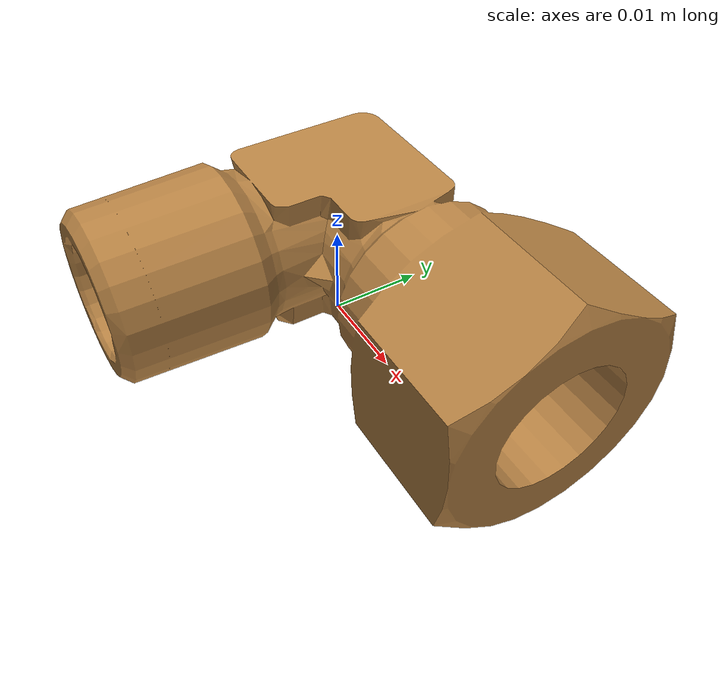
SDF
<?xml version="1.0" ?>
<sdf version="1.4">
	<model name='200n0601w_0_041m'>
		<pose> 0 0 0 0 0 0 </pose>
		<link name="link">
			<inertial>
				<mass> 0.09998 </mass>
				<pose> 0.00207 0.00425 0.0 0 0 0 </pose>
				<inertia>
					<ixx> 0.00002 </ixx>
					<ixy> 0.00001 </ixy>
					<ixz> 0.0 </ixz>
					<iyy> 0.00003 </iyy>
					<iyz> 0 </iyz>
					<izz> 0.00004 </izz>
				</inertia>
			</inertial>

			<collision name="collision">
				<geometry>
					<mesh>
						<uri> /home/kevin/research/gazebo/evaluation_platform/models/elbow_d_0_016m/meshes/elbow_d_0_016m_simplified_2612faces.dae </uri>
						<scale> 1 1 1 </scale>
					</mesh>
				</geometry>
				<surface>
					<bounce>
						<restitution_coefficient> 0.1 </restitution_coefficient>
					</bounce>
					<friction>
						<ode>
							<mu> 0.9 </mu>
							<mu2> 0.9 </mu2>
						</ode>
					</friction>

				</surface>
			</collision>

			<visual name="visual">
				<material>
					<ambient> 0.71 0.506 0.2627 1 </ambient>
					<diffuse> 0.71 0.506 0.2627 1 </diffuse>
				</material>
				<geometry>
					<mesh>
						<uri> /home/kevin/research/gazebo/evaluation_platform/models/elbow_d_0_016m/meshes/elbow_d_0_016m.dae </uri>
						<scale> 1 1 1 </scale>
					</mesh>
				</geometry>
			</visual>
		</link>
	</model>
</sdf>
